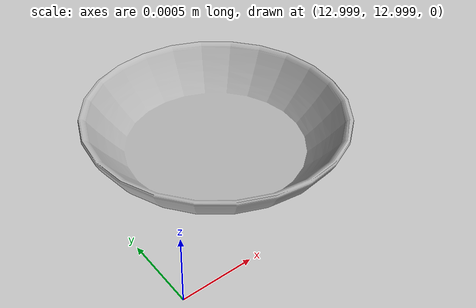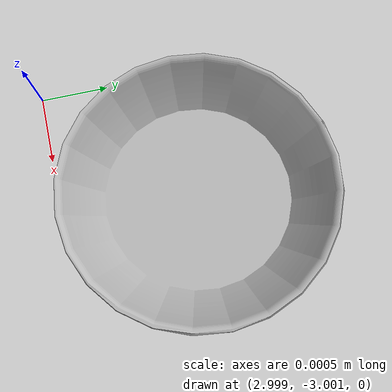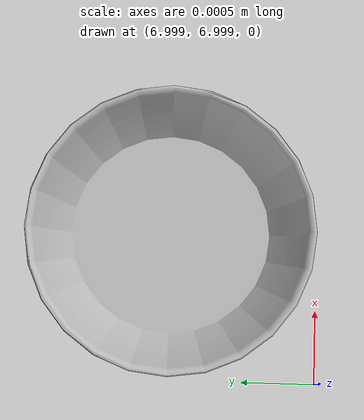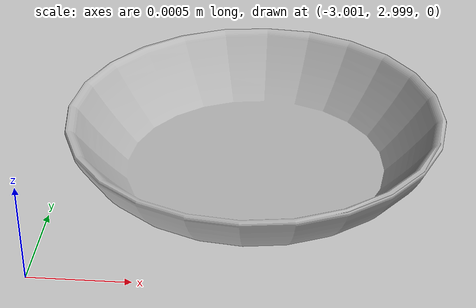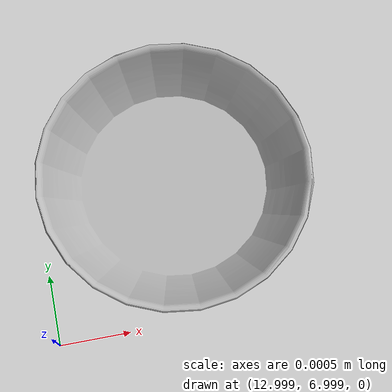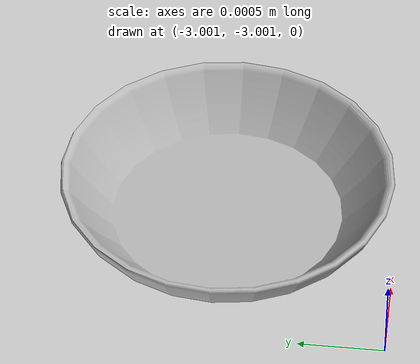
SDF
<?xml version="1.0"?>
<sdf version="1.5">
  <world name="default">
    <include>
      <uri>model://ground_plane</uri>
    </include>

    <include>
      <uri>model://sun</uri>
    </include>

    <!-- bowls around start region-->
    <include>
      <pose>-3 -3 0 0 0 0</pose>
      <uri>model://bowl</uri>
    </include>
    <include>
      <pose>3 3 0 0 0 0</pose>
      <uri>model://bowl</uri>
    </include>
   <include>
      <pose>-3 3 0 0 0 0</pose>
      <uri>model://bowl</uri>
    </include>
    <include>
      <pose>3 -3 0 0 0 0</pose>
      <uri>model://bowl</uri>
    </include>

    <!-- bowls around end region -->
    <include>
      <pose>7 7 0 0 0 0</pose>
      <uri>model://bowl</uri>
    </include>
    <include>
      <pose>13 13 0 0 0 0</pose>
      <uri>model://bowl</uri>
    </include>
   <include>
      <pose>7 13 0 0 0 0</pose>
      <uri>model://bowl</uri>
    </include>
    <include>
      <pose>13 7 0 0 0 0</pose>
      <uri>model://bowl</uri>
    </include>

    <plugin name="SimEvents" filename="libSimEventsPlugin.so">
      <session></session>

      <region>
        <name>start</name>
        <volume>
          <!-- min and max are ignition::math::Vector3d -->
          <!-- around the origin -->
          <min>-3 -3 -3</min>
          <max>3 3 3</max>
        </volume>
      </region>

      <region>
        <name>end</name>
        <volume>
          <!-- around 10,10  -->
          <min>7 7 -3</min>
          <max>13 13 3</max>
        </volume>
      </region>

      <event>
        <name>NewBeer</name>
        <type>existence</type>
        <model>beer</model>
      </event>

      <event>
        <name>Inactive</name>
        <type>sim_state</type>
        <!-- elements can be active or not,
        and this property can be set at runtime or in the world file
        with the active element
        by default, they are.
        -->
        <active>false</active>
      </event>

      <event>
        <name>All_spawn_and_delete</name>
        <type>existence</type>
        <!-- no model  is specified -->
      </event>

      <!-- when the simulation state changes (pause/play) -->
      <event>
        <name>Sim</name>
        <type>sim_state</type>
      </event>

      <!-- bounding box intersection event-->
      <event>
        <name>Can1_in_0_0</name>
        <type>inclusion</type>
        <model>can1</model>
        <region>start</region>
      </event>

      <!-- bounding box inclusion event -->
      <event>
        <name>Can1_in_10_10</name>
        <type>inclusion</type>
        <model>can1</model>
        <region>end</region>
      </event>
    </plugin>

    <!--
    spawn a few beers in the world
    -->
    <include>
      <pose>0 0 0 0 0 0</pose>
      <name>can1</name>
      <uri>model://beer</uri>
    </include>

  </world>
</sdf>

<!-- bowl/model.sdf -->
<sdf version="1.5">
  <model name="bowl">
    <link name="link">
      <inertial>
      <pose>0 0 0.0175 0 0 0</pose>
        <mass>0.1</mass>
	  <inertia>
	    <ixx>0.000250308</ixx>
	    <ixy>0.0</ixy>
	    <ixz>0.0</ixz>
	    <iyy>0.000250308</iyy>
	    <iyz>0.0</iyz>
	    <izz>0.0004802</izz>
	  </inertia>
      </inertial>
      <collision name="collision">
        <pose>0 0 0.0175 0 0 0</pose>
        <geometry>
          <cylinder>
            <radius>0.098</radius>
            <length>0.035</length>
          </cylinder>
        </geometry>
      </collision>
      <visual name="visual">
        <geometry>
          <mesh>
            <uri>model://../model_source/models/bowl/meshes/bowl.dae</uri>
          </mesh>
        </geometry>
      </visual>
    </link>
  </model>
</sdf>

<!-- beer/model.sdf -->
<sdf version='1.4'>
  <model name="beer">
    <link name='link'>
      <pose>0 0 0 0 0 0</pose>
      <inertial>
        <mass>0.390</mass>
        <inertia>
          <ixx>0.00058</ixx>
          <ixy>0</ixy>
          <ixz>0</ixz>
          <iyy>0.00058</iyy>
          <iyz>0</iyz>
          <izz>0.00025</izz>
        </inertia>
      </inertial>
      <collision name='collision'>
        <geometry>
          <cylinder>
            <radius>0.03500</radius>
            <length>0.12000</length>
          </cylinder>
        </geometry>
      </collision>

      <visual name='visual'>
        <geometry>
          <cylinder>
            <radius>0.03500</radius>
            <length>0.12000</length>
          </cylinder>
        </geometry>

        <material>
          <script>
            <uri>model://beer/materials/scripts</uri>
            <uri>model://beer/materials/textures</uri>
            <name>Beer/Diffuse</name>
          </script>
        </material>
      </visual>
    </link>
  </model>
</sdf>
